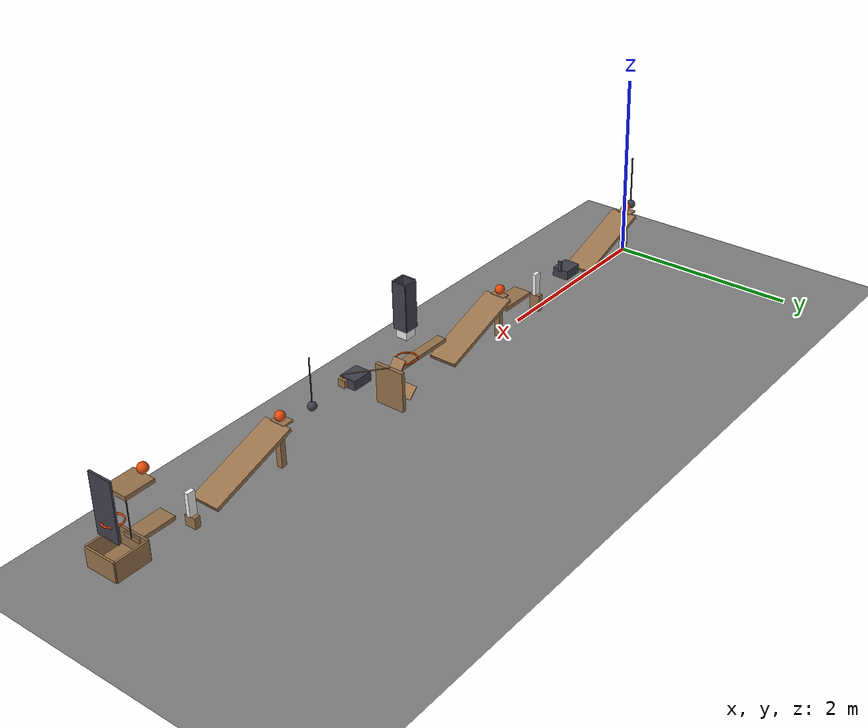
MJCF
<mujoco model="four_ramp_cascade_with_lowered_flap_receiver">
  <compiler angle="radian"/>
  <option timestep="0.002"/>
  <worldbody>
    <geom name="floor" type="plane" size="20 20 0.1" friction="0.68 0 0"/>
    <body name="ramp1">
      <geom name="ramp1_deck" type="box" pos="0.449122 0 0.285735" size="0.475 0.15 0.02" euler="0 0.331612 0" friction="0.68 0 0" solref="0.01 0.690107" rgba="0.6 0.45 0.3 1"/>
      <geom name="ramp1_leg" type="box" pos="0 0 0.22019" size="0.03 0.03 0.22019" friction="0.68 0 0" solref="0.01 0.690107" rgba="0.6 0.45 0.3 1"/>
    </body>
    <body name="ball1 perch">
      <geom name="ball1 perch" type="box" pos="-0.04 0 0.449289" size="0.06 0.08 0.01" friction="0.68 0 0" solref="0.01 0.690107" rgba="0.6 0.45 0.3 1"/>
    </body>
    <body name="ball1" pos="-0.025 0 0.509289">
      <freejoint/>
      <geom name="ball1" type="sphere" pos="0 0 0" size="0.05" mass="0.2" condim="6" friction="0.68 0 0" solref="0.01 0.690107" rgba="0.9 0.3 0.05 1"/>
    </body>
    <body name="pendulum1" pos="-0.125 0 1.05929">
      <joint name="pendulum1_hinge" type="hinge" pos="0 0 0" axis="0 1 0" limited="true" range="-1.309 0.959931" damping="0.04"/>
      <geom name="pendulum1" type="sphere" pos="0 0 -0.55" size="0.05" mass="0.37" friction="0.68 0 0" solref="0.01 0.690107" rgba="0.25 0.25 0.3 1"/>
      <geom name="pendulum1 rod" type="capsule" size="0.0075" fromto="0 0 0 0 0 -0.5" mass="0.03" friction="0.68 0 0" solref="0.01 0.690107" rgba="0.25 0.25 0.3 1"/>
    </body>
    <body name="cart1" pos="1.13475 0 0.225">
      <joint name="cart1_track" type="slide" pos="0 0 0" axis="1 0 0" limited="true" range="0 0.4" damping="0.2"/>
      <geom name="cart1" type="box" pos="0 0 0" size="0.11 0.09 0.05" mass="0.499" friction="0.68 0 0" solref="0.01 0.690107" rgba="0.25 0.25 0.3 1"/>
      <geom name="cart1 striker" type="box" pos="0.1175 0 0.09" size="0.0075 0.02 0.06" mass="0.001" friction="0.68 0 0" solref="0.01 0.690107" rgba="0.25 0.25 0.3 1"/>
    </body>
    <body name="domino1 plinth">
      <geom name="domino1 plinth" type="box" pos="1.68475 0 0.09" size="0.03 0.06 0.09" friction="0.68 0 0" solref="0.01 0.690107" rgba="0.6 0.45 0.3 1"/>
    </body>
    <body name="domino1" pos="1.68475 0 0.3">
      <freejoint/>
      <geom name="domino1" type="box" pos="0 0 0" size="0.04 0.02 0.12" mass="0.25" friction="0.68 0 0" solref="0.01 0.690107" rgba="0.95 0.95 0.95 1"/>
    </body>
    <body name="flap1" pos="1.92475 0 0.32">
      <joint name="flap1_hinge" type="hinge" pos="0 0 0" axis="0 1 0" limited="true" range="-1.5708 -0.436332" damping="0.04"/>
      <geom name="flap1" type="box" pos="0.2 0 0" size="0.2 0.1 0.02" mass="0.3" friction="0.68 0 0" solref="0.01 0.690107" rgba="0.6 0.45 0.3 1"/>
    </body>
    <body name="ramp2">
      <geom name="ramp2_deck" type="box" pos="2.78412 0 0.285735" size="0.475 0.15 0.02" euler="0 0.331612 0" friction="0.68 0 0" solref="0.01 0.690107" rgba="0.6 0.45 0.3 1"/>
      <geom name="ramp2_leg" type="box" pos="2.335 0 0.22019" size="0.03 0.03 0.22019" friction="0.68 0 0" solref="0.01 0.690107" rgba="0.6 0.45 0.3 1"/>
    </body>
    <body name="ball2 perch">
      <geom name="ball2 perch" type="box" pos="2.315 0 0.449289" size="0.04 0.08 0.01" friction="0.68 0 0" solref="0.01 0.690107" rgba="0.6 0.45 0.3 1"/>
    </body>
    <body name="ball2" pos="2.31 0 0.509289">
      <freejoint/>
      <geom name="ball2" type="sphere" pos="0 0 0" size="0.05" mass="0.2" condim="6" friction="0.68 0 0" solref="0.01 0.690107" rgba="0.9 0.3 0.05 1"/>
    </body>
    <body name="seesaw1" pos="3.56398 0 0.386109">
      <joint name="seesaw1_hinge" type="hinge" pos="0 0 0" axis="0 1 0" limited="true" range="-1.5708 -0.872665" stiffness="0.72" springref="-1.74533" damping="0.04"/>
      <geom name="seesaw1" type="box" pos="0 0 0" size="0.325 0.05 0.02" mass="0.546" friction="0.68 0 0" solref="0.01 0.690107" rgba="0.6 0.45 0.3 1"/>
      <geom name="seesaw1 carrier" type="box" pos="0.335159 0 0.026681" size="0.0699998 0.07 0.005" euler="0 0.872665 0" mass="0.004" friction="0.68 0 0" solref="0.01 0.690107" rgba="0.6 0.45 0.3 1"/>
    </body>
    <body name="block1" pos="3.75898 0 0.725">
      <freejoint/>
      <geom name="block1" type="box" pos="0 0 0" size="0.06 0.06 0.06" mass="0.35" friction="0.68 0 0" solref="0.01 0.690107" rgba="0.95 0.95 0.95 1"/>
    </body>
    <body name="block1 near guide">
      <geom name="block1 near guide" type="box" pos="3.68798 0 1.005" size="0.009 0.075 0.245" friction="0.68 0 0" solref="0.01 0.690107" rgba="0.25 0.25 0.3 1"/>
    </body>
    <body name="block1 far guide">
      <geom name="block1 far guide" type="box" pos="3.82998 0 1.005" size="0.009 0.075 0.245" friction="0.68 0 0" solref="0.01 0.690107" rgba="0.25 0.25 0.3 1"/>
    </body>
    <body name="block1 left guide">
      <geom name="block1 left guide" type="box" pos="3.75898 0.071 1.005" size="0.075 0.009 0.245" friction="0.68 0 0" solref="0.01 0.690107" rgba="0.25 0.25 0.3 1"/>
    </body>
    <body name="block1 right guide">
      <geom name="block1 right guide" type="box" pos="3.75898 -0.071 1.005" size="0.075 0.009 0.245" friction="0.68 0 0" solref="0.01 0.690107" rgba="0.25 0.25 0.3 1"/>
    </body>
    <body name="ring1">
      <geom name="ring1_00" type="capsule" size="0.008" fromto="3.86098 0 0.425 3.85322 0.0390337 0.425" friction="0.68 0 0" solref="0.01 0.690107" rgba="0.9 0.3 0.05 1"/>
      <geom name="ring1_01" type="capsule" size="0.008" fromto="3.85322 0.0390337 0.425 3.83111 0.0721249 0.425" friction="0.68 0 0" solref="0.01 0.690107" rgba="0.9 0.3 0.05 1"/>
      <geom name="ring1_02" type="capsule" size="0.008" fromto="3.83111 0.0721249 0.425 3.79801 0.0942357 0.425" friction="0.68 0 0" solref="0.01 0.690107" rgba="0.9 0.3 0.05 1"/>
      <geom name="ring1_03" type="capsule" size="0.008" fromto="3.79801 0.0942357 0.425 3.75898 0.102 0.425" friction="0.68 0 0" solref="0.01 0.690107" rgba="0.9 0.3 0.05 1"/>
      <geom name="ring1_04" type="capsule" size="0.008" fromto="3.75898 0.102 0.425 3.71995 0.0942357 0.425" friction="0.68 0 0" solref="0.01 0.690107" rgba="0.9 0.3 0.05 1"/>
      <geom name="ring1_05" type="capsule" size="0.008" fromto="3.71995 0.0942357 0.425 3.68686 0.0721249 0.425" friction="0.68 0 0" solref="0.01 0.690107" rgba="0.9 0.3 0.05 1"/>
      <geom name="ring1_06" type="capsule" size="0.008" fromto="3.68686 0.0721249 0.425 3.66475 0.0390337 0.425" friction="0.68 0 0" solref="0.01 0.690107" rgba="0.9 0.3 0.05 1"/>
      <geom name="ring1_07" type="capsule" size="0.008" fromto="3.66475 0.0390337 0.425 3.65698 1.24914e-17 0.425" friction="0.68 0 0" solref="0.01 0.690107" rgba="0.9 0.3 0.05 1"/>
      <geom name="ring1_08" type="capsule" size="0.008" fromto="3.65698 1.24914e-17 0.425 3.66475 -0.0390337 0.425" friction="0.68 0 0" solref="0.01 0.690107" rgba="0.9 0.3 0.05 1"/>
      <geom name="ring1_09" type="capsule" size="0.008" fromto="3.66475 -0.0390337 0.425 3.68686 -0.0721249 0.425" friction="0.68 0 0" solref="0.01 0.690107" rgba="0.9 0.3 0.05 1"/>
      <geom name="ring1_10" type="capsule" size="0.008" fromto="3.68686 -0.0721249 0.425 3.71995 -0.0942357 0.425" friction="0.68 0 0" solref="0.01 0.690107" rgba="0.9 0.3 0.05 1"/>
      <geom name="ring1_11" type="capsule" size="0.008" fromto="3.71995 -0.0942357 0.425 3.75898 -0.102 0.425" friction="0.68 0 0" solref="0.01 0.690107" rgba="0.9 0.3 0.05 1"/>
      <geom name="ring1_12" type="capsule" size="0.008" fromto="3.75898 -0.102 0.425 3.79801 -0.0942357 0.425" friction="0.68 0 0" solref="0.01 0.690107" rgba="0.9 0.3 0.05 1"/>
      <geom name="ring1_13" type="capsule" size="0.008" fromto="3.79801 -0.0942357 0.425 3.83111 -0.0721249 0.425" friction="0.68 0 0" solref="0.01 0.690107" rgba="0.9 0.3 0.05 1"/>
      <geom name="ring1_14" type="capsule" size="0.008" fromto="3.83111 -0.0721249 0.425 3.85322 -0.0390337 0.425" friction="0.68 0 0" solref="0.01 0.690107" rgba="0.9 0.3 0.05 1"/>
      <geom name="ring1_15" type="capsule" size="0.008" fromto="3.85322 -0.0390337 0.425 3.86098 -2.49828e-17 0.425" friction="0.68 0 0" solref="0.01 0.690107" rgba="0.9 0.3 0.05 1"/>
    </body>
    <body name="door1" pos="4 -0.16 0.23">
      <joint name="door1_hinge" type="hinge" pos="0 0 0" axis="0 0 1" limited="true" range="-1.22173 0" damping="0.04"/>
      <geom name="door1_panel" type="box" pos="0 0.16 0" size="0.02 0.16 0.21" mass="0.446" friction="0.68 0 0" solref="0.01 0.690107" rgba="0.6 0.45 0.3 1"/>
      <geom name="door1_cam" type="box" pos="-0.241019 0.16 -0.168535" size="0.0707107 0.07 0.005" euler="0 0.785398 0" mass="0.001" friction="0.68 0 0" solref="0.01 0.690107" rgba="0.6 0.45 0.3 1"/>
      <geom name="door1_latch" type="box" pos="0.4 -0.06 0.17" size="0.02 0.04 0.04" mass="0.001" friction="0.68 0 0" solref="0.01 0.690107" rgba="0.6 0.45 0.3 1"/>
      <geom name="door1_latch_support" type="capsule" size="0.005" fromto="0 0.16 0.21 0.4 -0.06 0.26" mass="0.001" friction="0.68 0 0" solref="0.01 0.690107" rgba="0.6 0.45 0.3 1"/>
      <geom name="door1_latch_stem" type="capsule" size="0.004" fromto="0.4 -0.06 0.26 0.4 -0.06 0.21" mass="0.001" friction="0.68 0 0" solref="0.01 0.690107" rgba="0.6 0.45 0.3 1"/>
    </body>
    <body name="cart2" pos="4.27 -0.18 0.4">
      <joint name="cart2_track" type="slide" pos="0 0 0" axis="1 0 0" limited="true" range="-0.03 0.42" stiffness="25" springref="0.42" damping="0.2"/>
      <geom name="cart2" type="box" pos="0 0 0" size="0.11 0.09 0.05" mass="0.5" friction="0.68 0 0" solref="0.01 0.690107" rgba="0.25 0.25 0.3 1"/>
    </body>
    <body name="pendulum2" pos="4.845 -0.18 0.9">
      <joint name="pendulum2_hinge" type="hinge" pos="0 0 0" axis="0 1 0" limited="true" range="-0.663225 0" damping="0.04"/>
      <geom name="pendulum2" type="sphere" pos="0 0 -0.5" size="0.045" mass="0.325" friction="0.68 0 0" solref="0.01 0.690107" rgba="0.25 0.25 0.3 1"/>
      <geom name="pendulum2 rod" type="capsule" size="0.006" fromto="0 0 0 0 0 -0.455" mass="0.025" friction="0.68 0 0" solref="0.01 0.690107" rgba="0.25 0.25 0.3 1"/>
    </body>
    <body name="ramp3">
      <geom name="ramp3_deck" type="box" pos="5.71412 -0.18 0.285735" size="0.475 0.15 0.02" euler="0 0.331612 0" friction="0.68 0 0" solref="0.01 0.690107" rgba="0.6 0.45 0.3 1"/>
      <geom name="ramp3_leg" type="box" pos="5.265 -0.18 0.22019" size="0.03 0.03 0.22019" friction="0.68 0 0" solref="0.01 0.690107" rgba="0.6 0.45 0.3 1"/>
    </body>
    <body name="ball3 perch">
      <geom name="ball3 perch" type="box" pos="5.225 -0.18 0.449289" size="0.06 0.08 0.01" friction="0.68 0 0" solref="0.01 0.690107" rgba="0.6 0.45 0.3 1"/>
    </body>
    <body name="ball3" pos="5.24 -0.18 0.509289">
      <freejoint/>
      <geom name="ball3" type="sphere" pos="0 0 0" size="0.05" mass="0.2" condim="6" friction="0.68 0 0" solref="0.01 0.690107" rgba="0.9 0.3 0.05 1"/>
    </body>
    <body name="domino2 plinth">
      <geom name="domino2 plinth" type="box" pos="6.30975 -0.18 0.055" size="0.03 0.06 0.055" friction="0.68 0 0" solref="0.01 0.690107" rgba="0.6 0.45 0.3 1"/>
    </body>
    <body name="domino2" pos="6.30975 -0.18 0.23">
      <freejoint/>
      <geom name="domino2" type="box" pos="0 0 0" size="0.04 0.02 0.12" mass="0.25" friction="0.68 0 0" solref="0.01 0.690107" rgba="0.95 0.95 0.95 1"/>
    </body>
    <body name="flap2" pos="6.54975 -0.18 0.27">
      <joint name="flap2_hinge" type="hinge" pos="0 0 0" axis="0 1 0" limited="true" range="-1.5708 -0.523599" damping="0.04"/>
      <geom name="flap2" type="box" pos="0.19 0 0" size="0.19 0.09 0.02" mass="0.274" friction="0.68 0 0" solref="0.01 0.690107" rgba="0.6 0.45 0.3 1"/>
      <geom name="flap2 striker" type="capsule" size="0.005" fromto="0.38 0 0 0.38 0 0.415692" mass="0.004" friction="0.68 0 0" solref="0.01 0.690107" rgba="0.25 0.25 0.3 1"/>
      <geom name="flap2 striker tip" type="sphere" pos="0.38 0 0.415692" size="0.015" mass="0.002" friction="0.68 0 0" solref="0.01 0.690107" rgba="0.25 0.25 0.3 1"/>
    </body>
    <body name="shelf1">
      <geom name="shelf1" type="box" pos="6.87475 -0.18 0.76" size="0.15 0.125 0.02" friction="0.68 0 0" solref="0.01 0.690107" rgba="0.6 0.45 0.3 1"/>
    </body>
    <body name="ball4" pos="6.72975 -0.18 0.83">
      <freejoint/>
      <geom name="ball4" type="sphere" pos="0 0 0" size="0.05" mass="0.2" condim="6" friction="0.68 0 0" solref="0.01 0.690107" rgba="0.9 0.3 0.05 1"/>
    </body>
    <body name="ball4 backstop">
      <geom name="ball4 backstop" type="box" pos="7.13475 -0.18 0.69" size="0.01 0.125 0.3" friction="0.68 0 0" solref="0.01 0.690107" rgba="0.25 0.25 0.3 1"/>
    </body>
    <body name="ring2">
      <geom name="ring2_00" type="capsule" size="0.008" fromto="7.16675 -0.18 0.53 7.15975 -0.144793 0.53" friction="0.68 0 0" solref="0.01 0.690107" rgba="0.9 0.3 0.05 1"/>
      <geom name="ring2_01" type="capsule" size="0.008" fromto="7.15975 -0.144793 0.53 7.13981 -0.114946 0.53" friction="0.68 0 0" solref="0.01 0.690107" rgba="0.9 0.3 0.05 1"/>
      <geom name="ring2_02" type="capsule" size="0.008" fromto="7.13981 -0.114946 0.53 7.10996 -0.0950031 0.53" friction="0.68 0 0" solref="0.01 0.690107" rgba="0.9 0.3 0.05 1"/>
      <geom name="ring2_03" type="capsule" size="0.008" fromto="7.10996 -0.0950031 0.53 7.07475 -0.088 0.53" friction="0.68 0 0" solref="0.01 0.690107" rgba="0.9 0.3 0.05 1"/>
      <geom name="ring2_04" type="capsule" size="0.008" fromto="7.07475 -0.088 0.53 7.03955 -0.0950031 0.53" friction="0.68 0 0" solref="0.01 0.690107" rgba="0.9 0.3 0.05 1"/>
      <geom name="ring2_05" type="capsule" size="0.008" fromto="7.03955 -0.0950031 0.53 7.0097 -0.114946 0.53" friction="0.68 0 0" solref="0.01 0.690107" rgba="0.9 0.3 0.05 1"/>
      <geom name="ring2_06" type="capsule" size="0.008" fromto="7.0097 -0.114946 0.53 6.98976 -0.144793 0.53" friction="0.68 0 0" solref="0.01 0.690107" rgba="0.9 0.3 0.05 1"/>
      <geom name="ring2_07" type="capsule" size="0.008" fromto="6.98976 -0.144793 0.53 6.98275 -0.18 0.53" friction="0.68 0 0" solref="0.01 0.690107" rgba="0.9 0.3 0.05 1"/>
      <geom name="ring2_08" type="capsule" size="0.008" fromto="6.98275 -0.18 0.53 6.98976 -0.215207 0.53" friction="0.68 0 0" solref="0.01 0.690107" rgba="0.9 0.3 0.05 1"/>
      <geom name="ring2_09" type="capsule" size="0.008" fromto="6.98976 -0.215207 0.53 7.0097 -0.245054 0.53" friction="0.68 0 0" solref="0.01 0.690107" rgba="0.9 0.3 0.05 1"/>
      <geom name="ring2_10" type="capsule" size="0.008" fromto="7.0097 -0.245054 0.53 7.03955 -0.264997 0.53" friction="0.68 0 0" solref="0.01 0.690107" rgba="0.9 0.3 0.05 1"/>
      <geom name="ring2_11" type="capsule" size="0.008" fromto="7.03955 -0.264997 0.53 7.07475 -0.272 0.53" friction="0.68 0 0" solref="0.01 0.690107" rgba="0.9 0.3 0.05 1"/>
      <geom name="ring2_12" type="capsule" size="0.008" fromto="7.07475 -0.272 0.53 7.10996 -0.264997 0.53" friction="0.68 0 0" solref="0.01 0.690107" rgba="0.9 0.3 0.05 1"/>
      <geom name="ring2_13" type="capsule" size="0.008" fromto="7.10996 -0.264997 0.53 7.13981 -0.245054 0.53" friction="0.68 0 0" solref="0.01 0.690107" rgba="0.9 0.3 0.05 1"/>
      <geom name="ring2_14" type="capsule" size="0.008" fromto="7.13981 -0.245054 0.53 7.15975 -0.215207 0.53" friction="0.68 0 0" solref="0.01 0.690107" rgba="0.9 0.3 0.05 1"/>
      <geom name="ring2_15" type="capsule" size="0.008" fromto="7.15975 -0.215207 0.53 7.16675 -0.18 0.53" friction="0.68 0 0" solref="0.01 0.690107" rgba="0.9 0.3 0.05 1"/>
    </body>
    <body name="box1">
      <geom name="box1_base" type="box" pos="7.07475 -0.18 0.12" size="0.17 0.17 0.01" friction="0.68 0 0" solref="0.01 0.690107" rgba="0.6 0.45 0.3 1"/>
      <geom name="box1_near_wall" type="box" pos="6.90475 -0.18 0.21" size="0.01 0.17 0.1" friction="0.68 0 0" solref="0.01 0.690107" rgba="0.6 0.45 0.3 1"/>
      <geom name="box1_far_wall" type="box" pos="7.24475 -0.18 0.21" size="0.01 0.17 0.1" friction="0.68 0 0" solref="0.01 0.690107" rgba="0.6 0.45 0.3 1"/>
      <geom name="box1_left_wall" type="box" pos="7.07475 -0.01 0.21" size="0.17 0.01 0.1" friction="0.68 0 0" solref="0.01 0.690107" rgba="0.6 0.45 0.3 1"/>
      <geom name="box1_right_wall" type="box" pos="7.07475 -0.35 0.21" size="0.17 0.01 0.1" friction="0.68 0 0" solref="0.01 0.690107" rgba="0.6 0.45 0.3 1"/>
    </body>
  </worldbody>
  <keyframe>
    <key name="start" qpos="-0.025 0 0.509289 1 0 0 0 0.959931 0 1.68475 0 0.3 1 0 0 0 -1.5708 2.31 0 0.509289 1 0 0 0 -0.872665 3.75898 0 0.725 1 0 0 0 0 0 0 5.24 -0.18 0.509289 1 0 0 0 6.30975 -0.18 0.23 1 0 0 0 -1.5708 6.72975 -0.18 0.83 1 0 0 0" qvel="0 0 0 0 0 0 0 0 0 0 0 0 0 0 0 0 0 0 0 0 0 0 0 0 0 0 0 0 0 0 0 0 0 0 0 0 0 0 0 0 0 0 0 0 0 0 0 0 0 0"/>
  </keyframe>
</mujoco>
